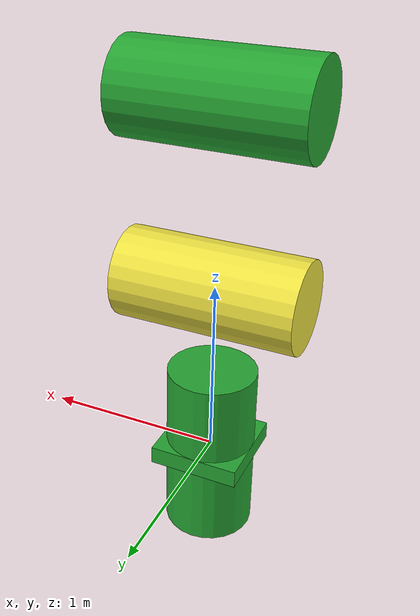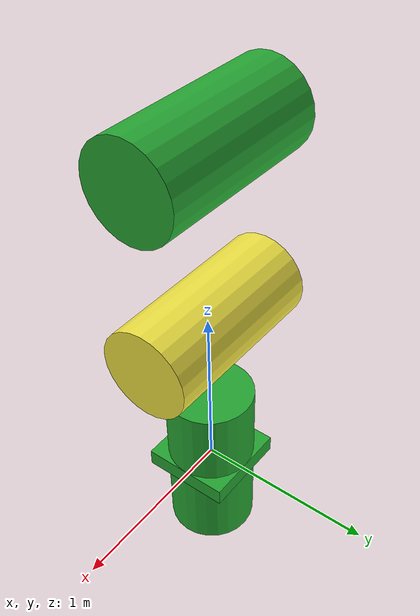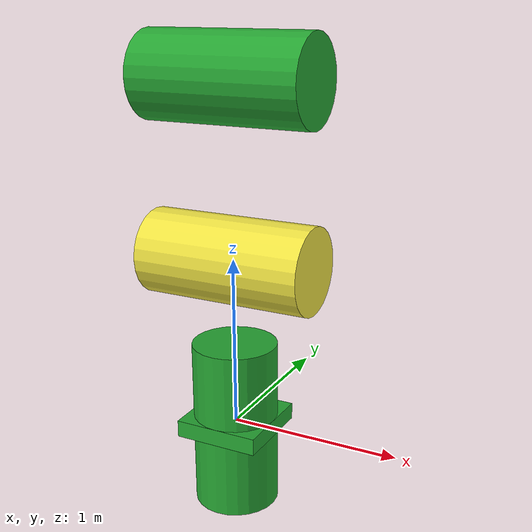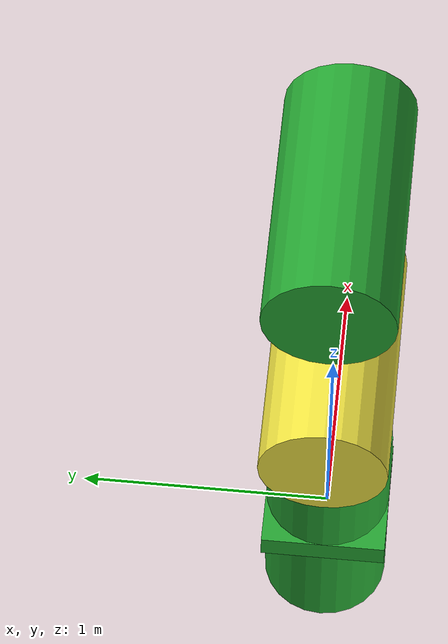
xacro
<?xml version="1.0"?>
<!-- Revolute-Revolute-Prismatic Manipulator -->
<robot name="scara" xmlns:xacro="http://www.ros.org/wiki/xacro">

  <xacro:property name="PI" value="3.1415926535897931"/>
  <!-- Import all Gazebo-customization elements, including Gazebo colors -->
  <xacro:include filename="$(find scara_description)/urdf/scara.gazebo" />
  <!-- Import Rviz colors -->
  <xacro:include filename="$(find scara_description)/urdf/materials.xacro" />

  <!-- WORLD LINK -->
  <link name="world"/>

  <!-- WORLD JOINT -->
  <joint name="fixed" type="fixed">
    <parent link="world"/>
    <child link="link0"/>
  </joint>

  <!-- GROUND LINK -->
  <link name="link0">
    <visual>
        <origin xyz="0 0 0" rpy="0 0 0" />
        <geometry>
          <box size="0.5 0.5 0.1"/>
        </geometry>
    </visual>
  </link>

  <!-- LINK 1 -->
  <link name="link1">
    <visual>
        <origin xyz="0 0 0" rpy="0 0 0" />
        <geometry>
          <cylinder length="1" radius="0.25"/>
        </geometry>
    </visual>
  </link>

  <!-- JOINT 1 -->
  <joint name="joint1" type="continuous">
    <parent link="link0"/>
    <child link="link1"/>
    <origin xyz="0 0 0" rpy="0 0 0"/>
    <axis xyz="0 0 1"/>
  </joint>

  <!-- LINK 1 INT. -->
  <link name="link1_int">
    <visual>
        <origin xyz="0 0 0" rpy="0 1.570796327 0" />
        <geometry>
          <cylinder length="1" radius="0.25"/>
        </geometry>
    </visual>
  </link>

  <!-- JOINT 1 INT. -->
  <joint name="joint1_int" type="fixed">
    <parent link="link1"/>
    <child link="link1_int"/>
    <origin xyz="0 0 1" rpy="0 0 0"/>
  </joint>

  <!-- LINK 2 -->
  <link name="link2">
    <visual>
        <origin xyz="0 0 0" rpy="0 1.570796327 0" />
        <geometry>
          <cylinder length="1" radius="0.25"/>
        </geometry>
    </visual>
  </link>

  <!-- JOINT 2 -->
  <joint name="joint2" type="continuous">
    <parent link="link1_int"/>
    <child link="link2"/>
    <origin xyz="0 0 1" rpy="0 0 0"/>
    <axis xyz="0 0 1"/>
  </joint>

  <plugin name="gazebo_ros_control" filename="libgazebo_ros_control.so">
    <robotNamespace>/scara</robotNamespace>
  </plugin>

</robot>
